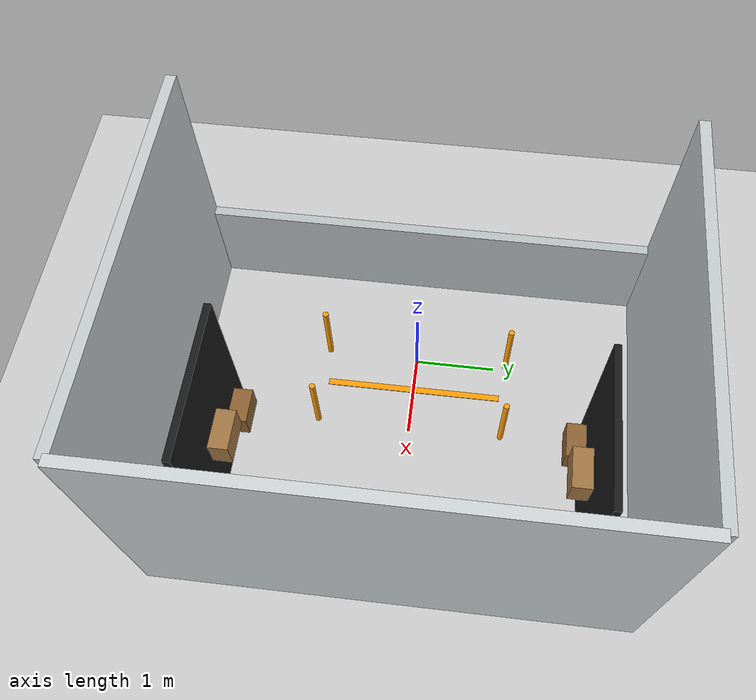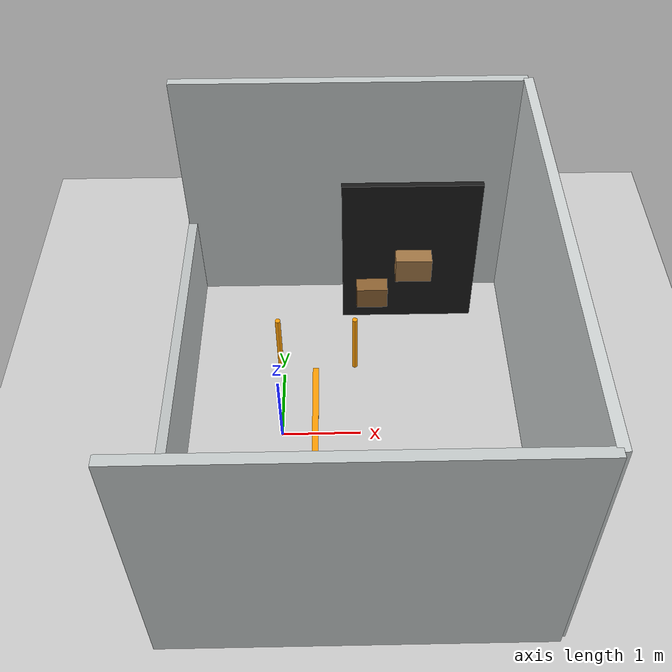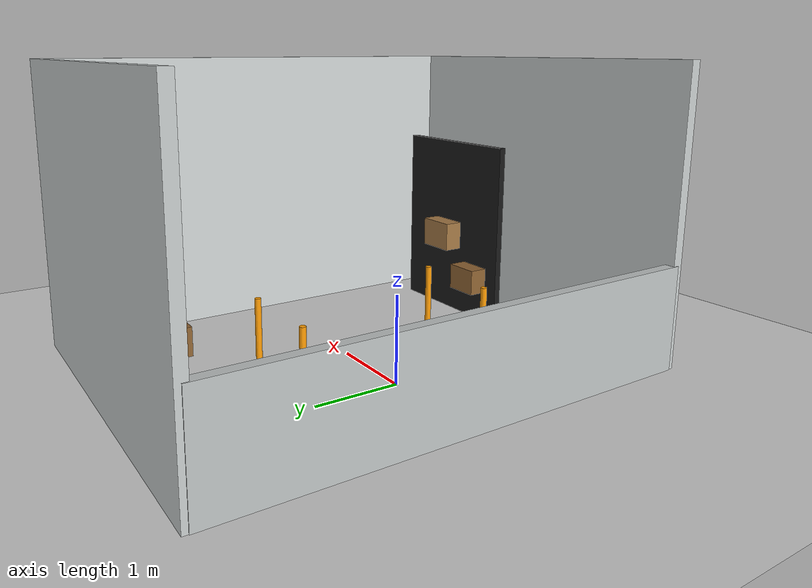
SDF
<?xml version="1.0" ?>
<sdf version="1.7">
  <world name="warehouse_world">
    <include>
      <uri>model://sun</uri>
    </include>
    <include>
      <uri>model://ground_plane</uri>
    </include>

    <physics type="ode">
      <max_step_size>0.001</max_step_size>
      <real_time_factor>1.0</real_time_factor>
      <real_time_update_rate>1000</real_time_update_rate>
    </physics>

    <scene>
      <ambient>0.55 0.55 0.55 1</ambient>
      <background>0.78 0.82 0.86 1</background>
      <shadows>true</shadows>
    </scene>

    <light name="overhead_strip_1" type="point">
      <pose>0 0 3.4 0 0 0</pose>
      <diffuse>0.95 0.95 0.9 1</diffuse>
      <specular>0.2 0.2 0.2 1</specular>
      <attenuation>
        <range>7.0</range>
        <constant>0.5</constant>
        <linear>0.02</linear>
        <quadratic>0.002</quadratic>
      </attenuation>
    </light>
    <light name="overhead_strip_2" type="point">
      <pose>2.2 0 3.4 0 0 0</pose>
      <diffuse>0.95 0.95 0.9 1</diffuse>
      <specular>0.2 0.2 0.2 1</specular>
      <attenuation>
        <range>7.0</range>
        <constant>0.5</constant>
        <linear>0.02</linear>
        <quadratic>0.002</quadratic>
      </attenuation>
    </light>

    <model name="closed_fulfillment_room">
      <static>true</static>
      <link name="room_shell">
        <visual name="back_wall">
          <pose>3.1 0 1.7 0 0 0</pose>
          <geometry><box><size>0.12 5.6 3.4</size></box></geometry>
          <material>
            <ambient>0.82 0.84 0.84 1</ambient>
            <diffuse>0.82 0.84 0.84 1</diffuse>
          </material>
        </visual>
        <collision name="back_wall_collision">
          <pose>3.1 0 1.7 0 0 0</pose>
          <geometry><box><size>0.12 5.6 3.4</size></box></geometry>
        </collision>

        <visual name="front_wall_low">
          <pose>-1.25 0 0.6 0 0 0</pose>
          <geometry><box><size>0.12 5.6 1.2</size></box></geometry>
          <material>
            <ambient>0.74 0.76 0.76 1</ambient>
            <diffuse>0.74 0.76 0.76 1</diffuse>
          </material>
        </visual>
        <collision name="front_wall_collision">
          <pose>-1.25 0 0.6 0 0 0</pose>
          <geometry><box><size>0.12 5.6 1.2</size></box></geometry>
        </collision>

        <visual name="left_wall">
          <pose>0.9 2.8 1.7 0 0 0</pose>
          <geometry><box><size>4.4 0.12 3.4</size></box></geometry>
          <material>
            <ambient>0.78 0.8 0.8 1</ambient>
            <diffuse>0.78 0.8 0.8 1</diffuse>
          </material>
        </visual>
        <collision name="left_wall_collision">
          <pose>0.9 2.8 1.7 0 0 0</pose>
          <geometry><box><size>4.4 0.12 3.4</size></box></geometry>
        </collision>

        <visual name="right_wall">
          <pose>0.9 -2.8 1.7 0 0 0</pose>
          <geometry><box><size>4.4 0.12 3.4</size></box></geometry>
          <material>
            <ambient>0.78 0.8 0.8 1</ambient>
            <diffuse>0.78 0.8 0.8 1</diffuse>
          </material>
        </visual>
        <collision name="right_wall_collision">
          <pose>0.9 -2.8 1.7 0 0 0</pose>
          <geometry><box><size>4.4 0.12 3.4</size></box></geometry>
        </collision>

        <visual name="floor_marking_center">
          <pose>0.42 0 0.012 0 0 0</pose>
          <geometry><box><size>0.08 2.2 0.01</size></box></geometry>
          <material>
            <ambient>1.0 0.62 0.02 1</ambient>
            <diffuse>1.0 0.62 0.02 1</diffuse>
          </material>
        </visual>
      </link>
    </model>

    <model name="warehouse_storage_racks">
      <static>true</static>
      <link name="racks">
        <visual name="rack_left_frame">
          <pose>1.7 2.15 1.15 0 0 0</pose>
          <geometry><box><size>1.8 0.08 2.3</size></box></geometry>
          <material><ambient>0.1 0.1 0.1 1</ambient><diffuse>0.1 0.1 0.1 1</diffuse></material>
        </visual>
        <visual name="rack_right_frame">
          <pose>1.7 -2.15 1.15 0 0 0</pose>
          <geometry><box><size>1.8 0.08 2.3</size></box></geometry>
          <material><ambient>0.1 0.1 0.1 1</ambient><diffuse>0.1 0.1 0.1 1</diffuse></material>
        </visual>
        <visual name="left_box_stack_1">
          <pose>1.2 2.05 0.55 0 0 0</pose>
          <geometry><box><size>0.42 0.34 0.32</size></box></geometry>
          <material><ambient>0.56 0.39 0.2 1</ambient><diffuse>0.56 0.39 0.2 1</diffuse></material>
        </visual>
        <visual name="left_box_stack_2">
          <pose>1.75 2.05 1.05 0 0 0</pose>
          <geometry><box><size>0.48 0.34 0.36</size></box></geometry>
          <material><ambient>0.64 0.47 0.27 1</ambient><diffuse>0.64 0.47 0.27 1</diffuse></material>
        </visual>
        <visual name="right_box_stack_1">
          <pose>1.2 -2.05 0.55 0 0 0</pose>
          <geometry><box><size>0.42 0.34 0.32</size></box></geometry>
          <material><ambient>0.56 0.39 0.2 1</ambient><diffuse>0.56 0.39 0.2 1</diffuse></material>
        </visual>
        <visual name="right_box_stack_2">
          <pose>1.75 -2.05 1.05 0 0 0</pose>
          <geometry><box><size>0.48 0.34 0.36</size></box></geometry>
          <material><ambient>0.64 0.47 0.27 1</ambient><diffuse>0.64 0.47 0.27 1</diffuse></material>
        </visual>
      </link>
    </model>

    <model name="safety_posts">
      <static>true</static>
      <link name="posts">
        <visual name="post_1"><pose>-0.05 1.15 0.45 0 0 0</pose><geometry><cylinder><radius>0.035</radius><length>0.9</length></cylinder></geometry><material><ambient>1 0.62 0.02 1</ambient><diffuse>1 0.62 0.02 1</diffuse></material></visual>
        <visual name="post_2"><pose>0.95 1.15 0.45 0 0 0</pose><geometry><cylinder><radius>0.035</radius><length>0.9</length></cylinder></geometry><material><ambient>1 0.62 0.02 1</ambient><diffuse>1 0.62 0.02 1</diffuse></material></visual>
        <visual name="post_3"><pose>-0.05 -1.15 0.45 0 0 0</pose><geometry><cylinder><radius>0.035</radius><length>0.9</length></cylinder></geometry><material><ambient>1 0.62 0.02 1</ambient><diffuse>1 0.62 0.02 1</diffuse></material></visual>
        <visual name="post_4"><pose>0.95 -1.15 0.45 0 0 0</pose><geometry><cylinder><radius>0.035</radius><length>0.9</length></cylinder></geometry><material><ambient>1 0.62 0.02 1</ambient><diffuse>1 0.62 0.02 1</diffuse></material></visual>
      </link>
    </model>
  </world>
</sdf>
